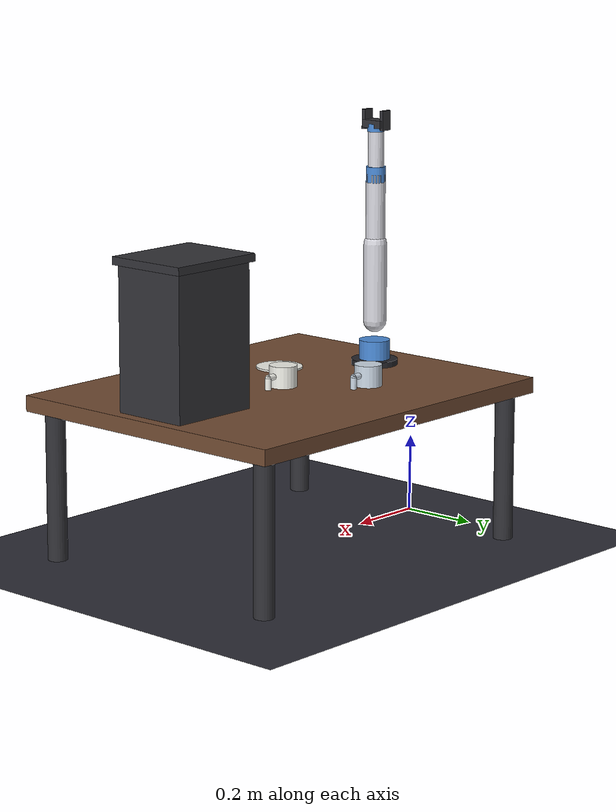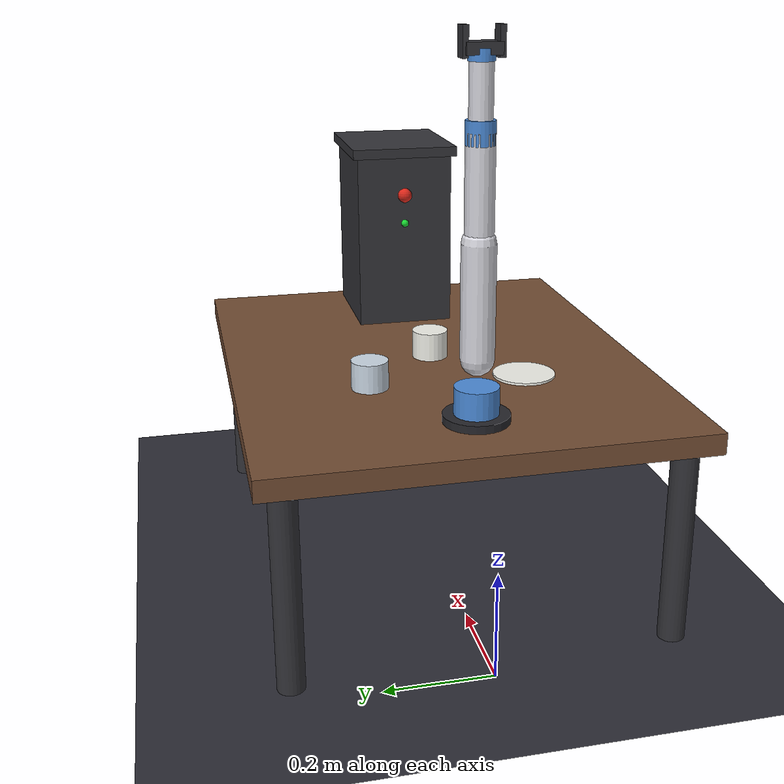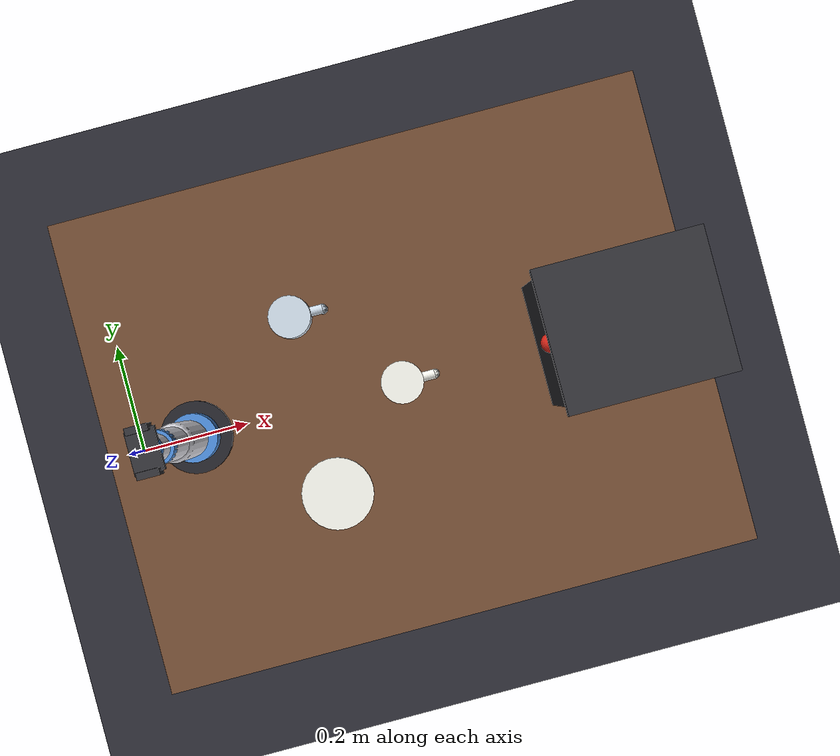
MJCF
<mujoco model="coffee_robot_scene">
  <option gravity="0 0 -9.81" timestep="0.002"/>

  <visual>
    <global offwidth="1280" offheight="720"/>
    <quality shadowsize="4096"/>
    <map znear="0.01" zfar="50"/>
  </visual>

  <asset>
    <!-- Materials -->
    <texture name="sky" type="skybox" builtin="gradient" rgb1="0.05 0.05 0.15" rgb2="0.2 0.3 0.5"
             width="512" height="512"/>
    <texture name="floor_tex" type="2d" builtin="checker" rgb1="0.15 0.15 0.18" rgb2="0.2 0.2 0.24"
             width="256" height="256" mark="none"/>
    <texture name="wood_tex" type="2d" builtin="flat" rgb1="0.45 0.3 0.2" rgb2="0.5 0.35 0.25"
             width="256" height="256" mark="random" markrgb="0.4 0.28 0.18"/>
    <texture name="metal_tex" type="2d" builtin="flat" rgb1="0.7 0.72 0.75" rgb2="0.6 0.62 0.65"
             width="256" height="256"/>

    <material name="floor_mat" texture="floor_tex" texrepeat="8 8" reflectance="0.3"/>
    <material name="wood_mat" texture="wood_tex" texrepeat="3 3" reflectance="0.1"/>
    <material name="metal_mat" texture="metal_tex" reflectance="0.5" specular="0.8" shininess="0.9"/>
    <material name="dark_metal" rgba="0.2 0.2 0.22 1" specular="0.9" shininess="0.95" reflectance="0.4"/>
    <material name="white_ceramic" rgba="0.95 0.95 0.92 1" specular="0.5" shininess="0.7" reflectance="0.2"/>
    <material name="coffee_liquid" rgba="0.25 0.15 0.08 0.9" specular="0.8" shininess="0.9"/>
    <material name="red_button" rgba="0.85 0.15 0.1 1" specular="0.6" shininess="0.8"/>
    <material name="green_light" rgba="0.1 0.85 0.2 1" emission="0.5"/>
    <material name="robot_base" rgba="0.15 0.15 0.17 1" specular="0.7" shininess="0.8" reflectance="0.3"/>
    <material name="robot_link" rgba="0.85 0.85 0.88 1" specular="0.8" shininess="0.9" reflectance="0.4"/>
    <material name="robot_joint" rgba="0.3 0.55 0.85 1" specular="0.6" shininess="0.7"/>
    <material name="gripper_mat" rgba="0.2 0.2 0.22 1" specular="0.7" shininess="0.8"/>
    <material name="target_mat" rgba="0.9 0.3 0.2 0.5" specular="0.3"/>
  </asset>

  <worldbody>
    <!-- Lighting -->
    <light pos="0 0 3" dir="0 0 -1" diffuse="0.8 0.8 0.85" specular="0.3 0.3 0.3" castshadow="true"/>
    <light pos="1.5 -1 2" dir="-0.5 0.3 -0.8" diffuse="0.4 0.35 0.3" specular="0.2 0.2 0.2" castshadow="true"/>
    <light pos="-1 1 2.5" dir="0.3 -0.3 -0.8" diffuse="0.2 0.2 0.35" specular="0.1 0.1 0.15"/>

    <!-- Floor -->
    <geom type="plane" size="3 3 0.01" material="floor_mat"/>

    <!-- Table -->
    <body name="table" pos="0.5 0 0.4">
      <geom type="box" size="0.5 0.4 0.02" material="wood_mat" mass="50"/>
      <!-- Table legs -->
      <geom type="cylinder" pos="-0.45 -0.35 -0.2" size="0.025 0.2" material="dark_metal"/>
      <geom type="cylinder" pos="0.45 -0.35 -0.2" size="0.025 0.2" material="dark_metal"/>
      <geom type="cylinder" pos="-0.45 0.35 -0.2" size="0.025 0.2" material="dark_metal"/>
      <geom type="cylinder" pos="0.45 0.35 -0.2" size="0.025 0.2" material="dark_metal"/>
    </body>

    <!-- Coffee Machine -->
    <body name="coffee_machine" pos="0.85 0 0.42">
      <!-- Main body -->
      <geom type="box" size="0.12 0.1 0.18" pos="0 0 0.18" material="dark_metal"/>
      <!-- Top -->
      <geom type="box" size="0.13 0.11 0.01" pos="0 0 0.37" material="dark_metal"/>
      <!-- Drip area -->
      <geom type="box" size="0.08 0.08 0.005" pos="0 0 0.005" material="metal_mat"/>
      <!-- Spout -->
      <geom type="cylinder" size="0.015 0.03" pos="0 0 0.12" material="metal_mat"/>
      <!-- Button -->
      <geom type="sphere" size="0.015" pos="-0.12 0 0.28" material="red_button"/>
      <!-- Power light -->
      <geom type="sphere" size="0.008" pos="-0.12 0 0.22" material="green_light"/>
    </body>

    <!-- Coffee Cup -->
    <body name="cup" pos="0.5 0 0.43">
      <joint name="cup_free" type="free"/>
      <geom name="cup_body" type="cylinder" size="0.035 0.045" material="white_ceramic" mass="0.15"/>
      <!-- Cup handle -->
      <geom type="capsule" fromto="0.035 0 0.02 0.055 0 0.02" size="0.008" material="white_ceramic"/>
      <geom type="capsule" fromto="0.035 0 -0.02 0.055 0 -0.02" size="0.008" material="white_ceramic"/>
      <geom type="capsule" fromto="0.055 0 -0.02 0.055 0 0.02" size="0.008" material="white_ceramic"/>
      <!-- Coffee inside -->
      <geom type="cylinder" size="0.03 0.005" pos="0 0 0.035" material="coffee_liquid"/>
    </body>

    <!-- Second cup (empty, target) -->
    <body name="cup2" pos="0.35 0.15 0.43">
      <joint name="cup2_free" type="free"/>
      <geom name="cup2_body" type="cylinder" size="0.035 0.045" rgba="0.8 0.85 0.9 1"
            mass="0.1" specular="0.5" shininess="0.7"/>
      <geom type="capsule" fromto="0.035 0 0.02 0.055 0 0.02" size="0.008" rgba="0.8 0.85 0.9 1"/>
      <geom type="capsule" fromto="0.035 0 -0.02 0.055 0 -0.02" size="0.008" rgba="0.8 0.85 0.9 1"/>
      <geom type="capsule" fromto="0.055 0 -0.02 0.055 0 0.02" size="0.008" rgba="0.8 0.85 0.9 1"/>
    </body>

    <!-- Saucer / Plate -->
    <body name="saucer" pos="0.35 -0.15 0.42">
      <geom type="cylinder" size="0.06 0.005" material="white_ceramic"/>
    </body>

    <!-- Robot Arm (6DOF) -->
    <body name="robot_base_link" pos="0.15 0 0.42">
      <geom type="cylinder" size="0.06 0.015" material="robot_base"/>

      <body name="link1" pos="0 0 0.015">
        <joint name="joint1" type="hinge" axis="0 0 1" range="-170 170" damping="5"/>
        <geom type="cylinder" size="0.04 0.05" material="robot_joint"/>

        <body name="link2" pos="0 0 0.1">
          <joint name="joint2" type="hinge" axis="0 1 0" range="-120 120" damping="5"/>
          <geom type="capsule" fromto="0 0 0 0 0 0.2" size="0.03" material="robot_link"/>

          <body name="link3" pos="0 0 0.2">
            <joint name="joint3" type="hinge" axis="0 1 0" range="-120 120" damping="3"/>
            <geom type="capsule" fromto="0 0 0 0 0 0.18" size="0.025" material="robot_link"/>

            <body name="link4" pos="0 0 0.18">
              <joint name="joint4" type="hinge" axis="0 0 1" range="-170 170" damping="2"/>
              <geom type="cylinder" size="0.025 0.02" material="robot_joint"/>

              <body name="link5" pos="0 0 0.02">
                <joint name="joint5" type="hinge" axis="0 1 0" range="-120 120" damping="2"/>
                <geom type="capsule" fromto="0 0 0 0 0 0.1" size="0.02" material="robot_link"/>

                <body name="wrist" pos="0 0 0.1">
                  <joint name="joint6" type="hinge" axis="0 0 1" range="-170 170" damping="1"/>
                  <geom type="cylinder" size="0.022 0.01" material="robot_joint"/>

                  <!-- Gripper -->
                  <body name="gripper_base" pos="0 0 0.01">
                    <geom type="box" size="0.02 0.03 0.01" material="gripper_mat"/>

                    <body name="finger_left" pos="0 -0.03 0.01">
                      <joint name="gripper_left" type="slide" axis="0 1 0" range="0 0.025" damping="10"/>
                      <geom type="box" size="0.015 0.005 0.025" material="gripper_mat"/>
                    </body>

                    <body name="finger_right" pos="0 0.03 0.01">
                      <joint name="gripper_right" type="slide" axis="0 -1 0" range="0 0.025" damping="10"/>
                      <geom type="box" size="0.015 0.005 0.025" material="gripper_mat"/>
                    </body>
                  </body>
                </body>
              </body>
            </body>
          </body>
        </body>
      </body>
    </body>

    <!-- Target indicator (transparent) -->
    <body name="target" pos="0.85 0 0.48">
      <geom type="cylinder" size="0.04 0.002" material="target_mat"/>
    </body>
  </worldbody>

  <actuator>
    <motor joint="joint1" ctrlrange="-1 1" gear="80"/>
    <motor joint="joint2" ctrlrange="-1 1" gear="80"/>
    <motor joint="joint3" ctrlrange="-1 1" gear="60"/>
    <motor joint="joint4" ctrlrange="-1 1" gear="40"/>
    <motor joint="joint5" ctrlrange="-1 1" gear="40"/>
    <motor joint="joint6" ctrlrange="-1 1" gear="20"/>
    <motor joint="gripper_left" ctrlrange="0 1" gear="30"/>
    <motor joint="gripper_right" ctrlrange="0 1" gear="30"/>
  </actuator>
</mujoco>
